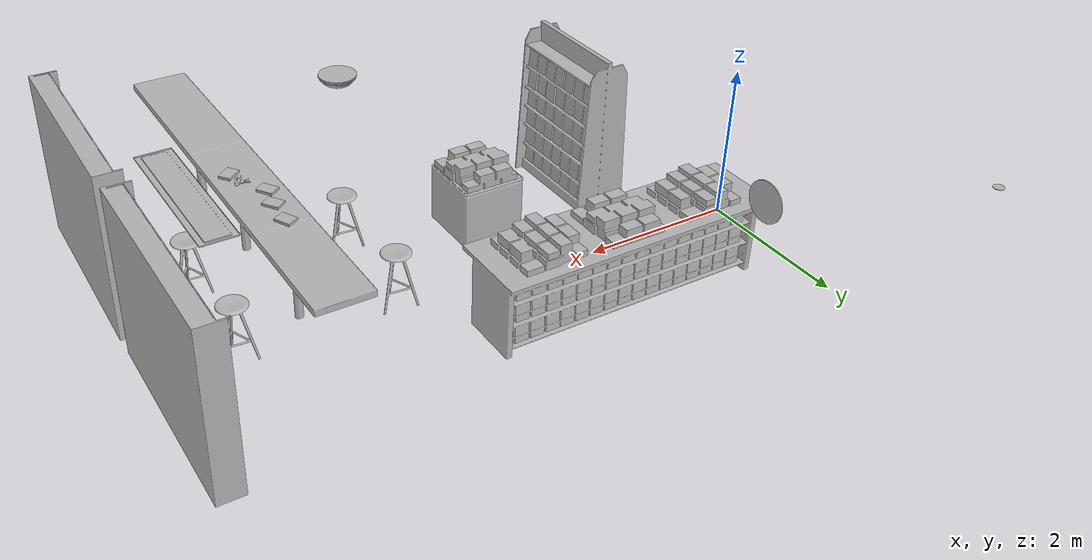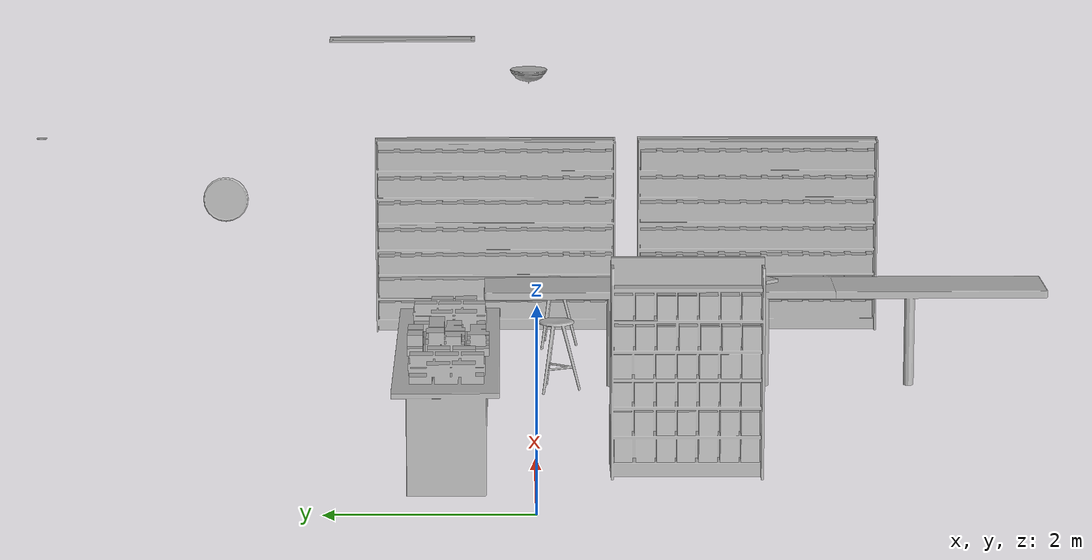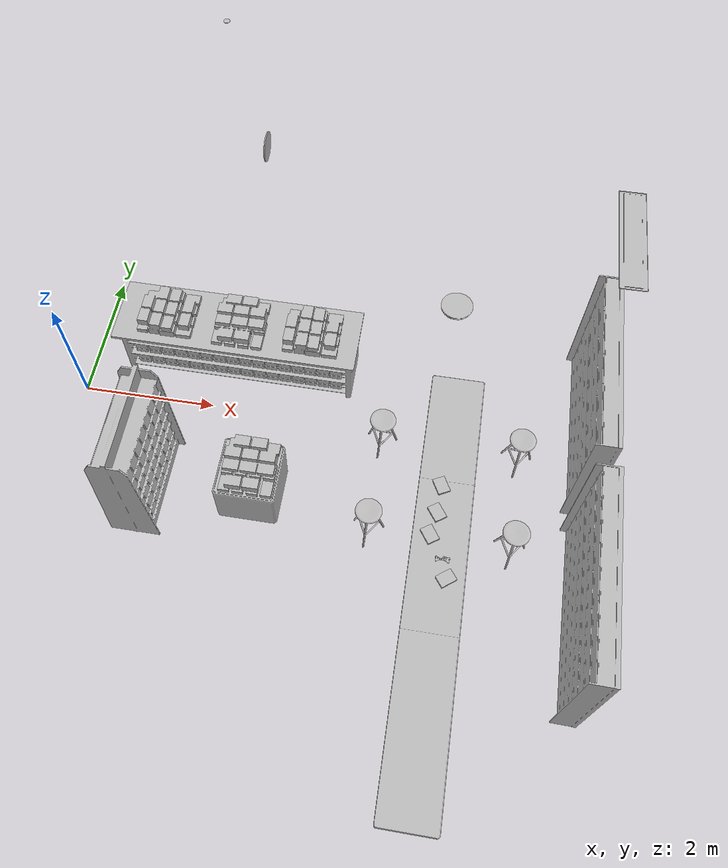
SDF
<sdf version="1.6">
 <world name="default">
  <model name="AirConditionerC_01_001">
   <link name="aws_robomaker_retail_AirConditionerC_01::link">
    <inertial><mass>50</mass></inertial>
    <collision name="collision">
     <geometry>
      <mesh>
       <uri>file://models/aws_robomaker_retail_AirConditionerC_01/meshes/aws_AirConditionerC_01_collision.DAE</uri>
       <scale>1 1 1</scale>
      </mesh>
     </geometry>
    </collision>
    <visual name="visual">
     <geometry>
      <mesh>
       <uri>file://models/aws_robomaker_retail_AirConditionerC_01/meshes/aws_AirConditionerC_01_visual.DAE</uri>
      </mesh>
     </geometry>
     <meta><layer>3</layer></meta>
    </visual>
   </link>
   <static>1</static>
   <pose>7.4582 1.42245 3.29094 0 0 -1.56422</pose>
  </model>
  <model name="Bicycle_01_001">
   <link name="aws_robomaker_retail_Bicycle_01::link">
    <inertial>
     <mass>0.04</mass>
     <inertia><ixx>0.1</ixx><ixy>0</ixy><ixz>0</ixz><iyy>0.1</iyy><iyz>0</iyz><izz>0.01</izz></inertia>
    </inertial>
    <collision name="collision">
     <geometry>
      <mesh>
       <uri>file://models/aws_robomaker_retail_Bicycle_01/meshes/aws_Bicycle_01_collision.DAE</uri>
       <scale>1 1 1</scale>
      </mesh>
     </geometry>
    </collision>
    <visual name="visual">
     <geometry>
      <mesh><uri>file://models/aws_robomaker_retail_Bicycle_01/meshes/aws_Bicycle_01_visual.DAE</uri></mesh>
     </geometry>
     <meta><layer>1</layer></meta>
    </visual>
   </link>
   <static>1</static>
   <pose>5.68125 -2.24245 0.931246 2e-06 -2.4e-05 -0</pose>
  </model>
  <model name="BookE_01_001">
   <link name="aws_robomaker_retail_BookE_01::link">
    <inertial>
     <mass>1</mass>
     <inertia><ixy>0</ixy><ixz>0</ixz><iyz>0</iyz><ixx>0.0666</ixx><iyy>0.0346</iyy><izz>0.0986</izz></inertia>
    </inertial>
    <collision name="collision">
     <geometry>
      <mesh>
       <uri>file://models/aws_robomaker_retail_BookE_01/meshes/aws_BookE_01_collision.DAE</uri>
       <scale>1 1 1</scale>
      </mesh>
     </geometry>
    </collision>
    <visual name="visual">
     <geometry>
      <mesh><uri>file://models/aws_robomaker_retail_BookE_01/meshes/aws_BookE_01_visual.DAE</uri></mesh>
     </geometry>
     <meta><layer>1</layer></meta>
    </visual>
   </link>
   <static>1</static>
   <pose>5.47653 -1.93253 0.948933 4e-06 1e-06 -2.54352</pose>
  </model>
  <model name="BookE_01_003">
   <link name="aws_robomaker_retail_BookE_01::link">
    <inertial>
     <mass>1</mass>
     <inertia><ixy>0</ixy><ixz>0</ixz><iyz>0</iyz><ixx>0.0666</ixx><iyy>0.0346</iyy><izz>0.0986</izz></inertia>
    </inertial>
    <collision name="collision">
     <geometry>
      <mesh>
       <uri>file://models/aws_robomaker_retail_BookE_01/meshes/aws_BookE_01_collision.DAE</uri>
       <scale>1 1 1</scale>
      </mesh>
     </geometry>
    </collision>
    <visual name="visual">
     <geometry>
      <mesh><uri>file://models/aws_robomaker_retail_BookE_01/meshes/aws_BookE_01_visual.DAE</uri></mesh>
     </geometry>
     <meta><layer>1</layer></meta>
    </visual>
   </link>
   <static>1</static>
   <pose>5.55255 -1.21421 0.948933 4e-06 -1e-06 -2.65431</pose>
  </model>
  <model name="BookE_01_005">
   <link name="aws_robomaker_retail_BookE_01::link">
    <inertial>
     <mass>1</mass>
     <inertia><ixy>0</ixy><ixz>0</ixz><iyz>0</iyz><ixx>0.0666</ixx><iyy>0.0346</iyy><izz>0.0986</izz></inertia>
    </inertial>
    <collision name="collision">
     <geometry>
      <mesh>
       <uri>file://models/aws_robomaker_retail_BookE_01/meshes/aws_BookE_01_collision.DAE</uri>
       <scale>1 1 1</scale>
      </mesh>
     </geometry>
    </collision>
    <visual name="visual">
     <geometry>
      <mesh><uri>file://models/aws_robomaker_retail_BookE_01/meshes/aws_BookE_01_visual.DAE</uri></mesh>
     </geometry>
     <meta><layer>1</layer></meta>
    </visual>
   </link>
   <static>1</static>
   <pose>5.53815 -1.61032 0.948933 0 0 -2.5269</pose>
  </model>
  <model name="BookE_01_011">
   <link name="aws_robomaker_retail_BookE_01::link">
    <inertial>
     <mass>1</mass>
     <inertia><ixy>0</ixy><ixz>0</ixz><iyz>0</iyz><ixx>0.0666</ixx><iyy>0.0346</iyy><izz>0.0986</izz></inertia>
    </inertial>
    <collision name="collision">
     <geometry>
      <mesh>
       <uri>file://models/aws_robomaker_retail_BookE_01/meshes/aws_BookE_01_collision.DAE</uri>
       <scale>1 1 1</scale>
      </mesh>
     </geometry>
    </collision>
    <visual name="visual">
     <geometry>
      <mesh><uri>file://models/aws_robomaker_retail_BookE_01/meshes/aws_BookE_01_visual.DAE</uri></mesh>
     </geometry>
     <meta><layer>1</layer></meta>
    </visual>
   </link>
   <static>1</static>
   <pose>5.74923 -2.49202 0.948933 2e-06 1e-06 2.22339</pose>
  </model>
  <model name="BookF_01_001">
   <link name="aws_robomaker_retail_BookF_01::link">
    <inertial>
     <mass>10</mass>
     <inertia>
      <ixx>0.583817</ixx>
      <ixy>0</ixy>
      <ixz>0</ixz>
      <iyy>0.502925</iyy>
      <iyz>0</iyz>
      <izz>0.99304</izz>
     </inertia>
    </inertial>
    <collision name="collision">
     <geometry>
      <mesh>
       <uri>file://models/aws_robomaker_retail_BookF_01/meshes/aws_BookF_01_collision.DAE</uri>
       <scale>1 1 1</scale>
      </mesh>
     </geometry>
    </collision>
    <visual name="visual">
     <geometry>
      <mesh><uri>file://models/aws_robomaker_retail_BookF_01/meshes/aws_BookF_01_visual.DAE</uri></mesh>
     </geometry>
     <meta><layer>1</layer></meta>
    </visual>
   </link>
   <static>1</static>
   <pose>2.93178 -1.30325 0.770041 0.003448 -1.1e-05 0.003114</pose>
  </model>
  <model name="BookF_01_004">
   <link name="aws_robomaker_retail_BookF_01::link">
    <inertial>
     <mass>10</mass>
     <inertia>
      <ixx>0.583817</ixx>
      <ixy>0</ixy>
      <ixz>0</ixz>
      <iyy>0.502925</iyy>
      <iyz>0</iyz>
      <izz>0.99304</izz>
     </inertia>
    </inertial>
    <collision name="collision">
     <geometry>
      <mesh>
       <uri>file://models/aws_robomaker_retail_BookF_01/meshes/aws_BookF_01_collision.DAE</uri>
       <scale>1 1 1</scale>
      </mesh>
     </geometry>
    </collision>
    <visual name="visual">
     <geometry>
      <mesh><uri>file://models/aws_robomaker_retail_BookF_01/meshes/aws_BookF_01_visual.DAE</uri></mesh>
     </geometry>
     <meta><layer>1</layer></meta>
    </visual>
   </link>
   <static>1</static>
   <pose>1.26164 0.856469 1.03816 8e-06 -0 1.58038</pose>
  </model>
  <model name="BookD_01_004">
   <link name="aws_robomaker_retail_BookD_01::link">
    <inertial><mass>0.5</mass></inertial>
    <collision name="collision">
     <geometry>
      <mesh>
       <uri>file://models/aws_robomaker_retail_BookD_01/meshes/aws_BookD_01_collision.DAE</uri>
       <scale>1 1 1</scale>
      </mesh>
     </geometry>
    </collision>
    <visual name="visual">
     <geometry>
      <mesh><uri>file://models/aws_robomaker_retail_BookD_01/meshes/aws_BookD_01_visual.DAE</uri></mesh>
     </geometry>
     <meta><layer>1</layer></meta>
    </visual>
   </link>
   <static>1</static>
   <pose>2.35863 0.854853 1.03815 6e-06 -0 0.001712</pose>
  </model>
  <model name="BookF_01_005">
   <link name="aws_robomaker_retail_BookF_01::link">
    <inertial>
     <mass>10</mass>
     <inertia>
      <ixx>0.583817</ixx>
      <ixy>0</ixy>
      <ixz>0</ixz>
      <iyy>0.502925</iyy>
      <iyz>0</iyz>
      <izz>0.99304</izz>
     </inertia>
    </inertial>
    <collision name="collision">
     <geometry>
      <mesh>
       <uri>file://models/aws_robomaker_retail_BookF_01/meshes/aws_BookF_01_collision.DAE</uri>
       <scale>1 1 1</scale>
      </mesh>
     </geometry>
    </collision>
    <visual name="visual">
     <geometry>
      <mesh><uri>file://models/aws_robomaker_retail_BookF_01/meshes/aws_BookF_01_visual.DAE</uri></mesh>
     </geometry>
     <meta><layer>1</layer></meta>
    </visual>
   </link>
   <static>1</static>
   <pose>3.43061 0.856469 1.03816 8e-06 -0 1.58038</pose>
  </model>
  <model name="BookshelfA_01_001">
   <link name="aws_robomaker_retail_BookshelfA_01::link">
    <inertial>
     <mass>50</mass>
     <inertia><ixx>27.7341</ixx><ixy>0</ixy><ixz>0</ixz><iyy>20.9361</iyy><iyz>0</iyz><izz>11.3596</izz></inertia>
    </inertial>
    <collision name="collision">
     <geometry>
      <mesh>
       <uri>file://models/aws_robomaker_retail_BookshelfA_01/meshes/aws_BookshelfA_01_collision.DAE</uri>
       <scale>1 1 1</scale>
      </mesh>
     </geometry>
    </collision>
    <visual name="visual">
     <geometry>
      <mesh><uri>file://models/aws_robomaker_retail_BookshelfA_01/meshes/aws_BookshelfA_01_visual.DAE</uri></mesh>
     </geometry>
     <meta><layer>1</layer></meta>
    </visual>
   </link>
   <static>1</static>
   <pose>1.40515 -1.44974 0.03755 0.00349 -3e-06 0.000696</pose>
  </model>
  <model name="BookshelfB_01_007">
   <link name="aws_robomaker_retail_BookshelfB_01::link">
    <inertial>
     <mass>50</mass>
     <inertia><ixx>19.8742</ixx><ixy>0</ixy><ixz>0</ixz><iyy>49.1263</iyy><iyz>0</iyz><izz>30.2231</izz></inertia>
    </inertial>
    <collision name="collision">
     <geometry>
      <mesh>
       <uri>file://models/aws_robomaker_retail_BookshelfB_01/meshes/aws_BookshelfB_01_collision.DAE</uri>
       <scale>1 1 1</scale>
      </mesh>
     </geometry>
    </collision>
    <visual name="visual">
     <geometry>
      <mesh><uri>file://models/aws_robomaker_retail_BookshelfB_01/meshes/aws_BookshelfB_01_visual.DAE</uri></mesh>
     </geometry>
     <meta><layer>1</layer></meta>
    </visual>
   </link>
   <static>1</static>
   <pose>7.47833 -2.51065 0.017402 1e-05 -1.3e-05 1.56207</pose>
  </model>
  <model name="BookshelfB_01_008">
   <link name="aws_robomaker_retail_BookshelfB_01::link">
    <inertial>
     <mass>50</mass>
     <inertia><ixx>19.8742</ixx><ixy>0</ixy><ixz>0</ixz><iyy>49.1263</iyy><iyz>0</iyz><izz>30.2231</izz></inertia>
    </inertial>
    <collision name="collision">
     <geometry>
      <mesh>
       <uri>file://models/aws_robomaker_retail_BookshelfB_01/meshes/aws_BookshelfB_01_collision.DAE</uri>
       <scale>1 1 1</scale>
      </mesh>
     </geometry>
    </collision>
    <visual name="visual">
     <geometry>
      <mesh><uri>file://models/aws_robomaker_retail_BookshelfB_01/meshes/aws_BookshelfB_01_visual.DAE</uri></mesh>
     </geometry>
     <meta><layer>1</layer></meta>
    </visual>
   </link>
   <static>1</static>
   <pose>7.47833 0.402539 0.017181 3e-06 -0.000156 1.5708</pose>
  </model>
  <model name="BookshelfC_01_001">
   <link name="aws_robomaker_retail_BookshelfC_01::link">
    <inertial>
     <mass>50</mass>
     <inertia><ixx>5.5865</ixx><ixy>0</ixy><ixz>0</ixz><iyy>5.47324</iyy><iyz>0</iyz><izz>6.23277</izz></inertia>
    </inertial>
    <collision name="collision">
     <geometry>
      <mesh>
       <uri>file://models/aws_robomaker_retail_BookshelfC_01/meshes/aws_BookshelfC_01_collision.DAE</uri>
       <scale>1 1 1</scale>
      </mesh>
     </geometry>
    </collision>
    <visual name="visual">
     <geometry>
      <mesh><uri>file://models/aws_robomaker_retail_BookshelfC_01/meshes/aws_BookshelfC_01_visual.DAE</uri></mesh>
     </geometry>
     <meta><layer>1</layer></meta>
    </visual>
   </link>
   <static>1</static>
   <pose>2.91113 -1.31023 0.008469 0.003452 -3e-06 0.00062</pose>
  </model>
  <model name="ChairB_01_001">
   <link name="aws_robomaker_retail_ChairB_01::link">
    <inertial>
     <mass>3</mass>
     <inertia>
      <ixx>0.188185</ixx>
      <ixy>0</ixy>
      <ixz>0</ixz>
      <iyy>0.190617</iyy>
      <iyz>0</iyz>
      <izz>0.100999</izz>
     </inertia>
    </inertial>
    <collision name="collision">
     <geometry>
      <mesh>
       <uri>file://models/aws_robomaker_retail_ChairB_01/meshes/aws_ChairB_01_collision.DAE</uri>
       <scale>1 1 1</scale>
      </mesh>
     </geometry>
    </collision>
    <visual name="visual">
     <geometry>
      <mesh><uri>file://models/aws_robomaker_retail_ChairB_01/meshes/aws_ChairB_01_visual.DAE</uri></mesh>
     </geometry>
     <meta><layer>1</layer></meta>
    </visual>
   </link>
   <static>1</static>
   <pose>6.64396 -0.210457 0.022051 0 0.006174 8.8e-05</pose>
  </model>
  <model name="ChairB_01_002">
   <link name="aws_robomaker_retail_ChairB_01::link">
    <inertial>
     <mass>3</mass>
     <inertia>
      <ixx>0.188185</ixx>
      <ixy>0</ixy>
      <ixz>0</ixz>
      <iyy>0.190617</iyy>
      <iyz>0</iyz>
      <izz>0.100999</izz>
     </inertia>
    </inertial>
    <collision name="collision">
     <geometry>
      <mesh>
       <uri>file://models/aws_robomaker_retail_ChairB_01/meshes/aws_ChairB_01_collision.DAE</uri>
       <scale>1 1 1</scale>
      </mesh>
     </geometry>
    </collision>
    <visual name="visual">
     <geometry>
      <mesh><uri>file://models/aws_robomaker_retail_ChairB_01/meshes/aws_ChairB_01_visual.DAE</uri></mesh>
     </geometry>
     <meta><layer>1</layer></meta>
    </visual>
   </link>
   <static>1</static>
   <pose>6.64396 -1.62199 0.022051 0 0.006174 8.8e-05</pose>
  </model>
  <model name="ChairB_01_005">
   <link name="aws_robomaker_retail_ChairB_01::link">
    <inertial>
     <mass>3</mass>
     <inertia>
      <ixx>0.188185</ixx>
      <ixy>0</ixy>
      <ixz>0</ixz>
      <iyy>0.190617</iyy>
      <iyz>0</iyz>
      <izz>0.100999</izz>
     </inertia>
    </inertial>
    <collision name="collision">
     <geometry>
      <mesh>
       <uri>file://models/aws_robomaker_retail_ChairB_01/meshes/aws_ChairB_01_collision.DAE</uri>
       <scale>1 1 1</scale>
      </mesh>
     </geometry>
    </collision>
    <visual name="visual">
     <geometry>
      <mesh><uri>file://models/aws_robomaker_retail_ChairB_01/meshes/aws_ChairB_01_visual.DAE</uri></mesh>
     </geometry>
     <meta><layer>1</layer></meta>
    </visual>
   </link>
   <static>1</static>
   <pose>4.6533 -0.210457 0.022051 0 0.006174 8.8e-05</pose>
  </model>
  <model name="ChairB_01_006">
   <link name="aws_robomaker_retail_ChairB_01::link">
    <inertial>
     <mass>3</mass>
     <inertia>
      <ixx>0.188185</ixx>
      <ixy>0</ixy>
      <ixz>0</ixz>
      <iyy>0.190617</iyy>
      <iyz>0</iyz>
      <izz>0.100999</izz>
     </inertia>
    </inertial>
    <collision name="collision">
     <geometry>
      <mesh>
       <uri>file://models/aws_robomaker_retail_ChairB_01/meshes/aws_ChairB_01_collision.DAE</uri>
       <scale>1 1 1</scale>
      </mesh>
     </geometry>
    </collision>
    <visual name="visual">
     <geometry>
      <mesh><uri>file://models/aws_robomaker_retail_ChairB_01/meshes/aws_ChairB_01_visual.DAE</uri></mesh>
     </geometry>
     <meta><layer>1</layer></meta>
    </visual>
   </link>
   <static>1</static>
   <pose>4.6533 -1.62199 0.022051 0 0.006174 8.8e-05</pose>
  </model>
  <model name="DeskB_01_001">
   <link name="aws_robomaker_retail_DeskB_01::link">
    <inertial>
     <mass>50</mass>
     <inertia><ixx>154.884</ixx><ixy>0</ixy><ixz>0</ixz><iyy>7.48424</iyy><iyz>0</iyz><izz>152.099</izz></inertia>
    </inertial>
    <collision name="collision">
     <geometry>
      <mesh>
       <uri>file://models/aws_robomaker_retail_DeskB_01/meshes/aws_DeskB_01_collision.DAE</uri>
       <scale>1 1 1</scale>
      </mesh>
     </geometry>
    </collision>
    <visual name="visual">
     <geometry>
      <mesh><uri>file://models/aws_robomaker_retail_DeskB_01/meshes/aws_DeskB_01_visual.DAE</uri></mesh>
     </geometry>
     <meta><layer>1</layer></meta>
    </visual>
   </link>
   <static>1</static>
   <pose>5.62294 -2.47542 -0.181282 0 -0 0</pose>
  </model>
  <model name="DeskA_01_005">
   <link name="aws_robomaker_retail_DeskA_01::link">
    <inertial>
     <mass>20</mass>
     <inertia><ixx>3.49717</ixx><ixy>0</ixy><ixz>0</ixz><iyy>23.5599</iyy><iyz>0</iyz><izz>23.5702</izz></inertia>
    </inertial>
    <collision name="collision">
     <geometry>
      <mesh>
       <uri>file://models/aws_robomaker_retail_DeskA_01/meshes/aws_DeskA_01_collision.DAE</uri>
       <scale>1 1 1</scale>
      </mesh>
     </geometry>
    </collision>
    <visual name="visual">
     <geometry>
      <mesh><uri>file://models/aws_robomaker_retail_DeskA_01/meshes/aws_DeskA_01_visual.DAE</uri></mesh>
     </geometry>
     <meta><layer>1</layer></meta>
    </visual>
   </link>
   <static>1</static>
   <pose>2.2982 0.861754 0.014883 -2e-06 0.003451 2.4e-05</pose>
  </model>
  <model name="Horologe_01_001">
   <link name="aws_robomaker_retail_Horologe_01::link">
    <inertial><mass>1</mass></inertial>
    <collision name="collision">
     <geometry>
      <mesh>
       <uri>file://models/aws_robomaker_retail_Horologe_01/meshes/aws_Horologe_01_collision.DAE</uri>
       <scale>1 1 1</scale>
      </mesh>
     </geometry>
    </collision>
    <visual name="visual">
     <geometry>
      <mesh><uri>file://models/aws_robomaker_retail_Horologe_01/meshes/aws_Horologe_01_visual.DAE</uri></mesh>
     </geometry>
     <meta><layer>2</layer></meta>
    </visual>
   </link>
   <static>1</static>
   <pose>2.40512 3.02571 2.52519 0 0 -1.56558</pose>
  </model>
  <model name="LightA_01_003">
   <link name="aws_robomaker_retail_LightA_01::link">
    <inertial><mass>1</mass></inertial>
    <collision name="collision">
     <geometry>
      <mesh>
       <uri>file://models/aws_robomaker_retail_LightA_01/meshes/aws_LightA_01_collision.DAE</uri>
       <scale>1 1 1</scale>
      </mesh>
     </geometry>
    </collision>
    <visual name="visual">
     <geometry>
      <mesh><uri>file://models/aws_robomaker_retail_LightA_01/meshes/aws_LightA_01_visual.DAE</uri></mesh>
     </geometry>
     <meta><layer>3</layer></meta>
    </visual>
   </link>
   <static>1</static>
   <pose>5.38399 0.04192 3.15033 0 -0 0</pose>
  </model>
  <model name="Spotlight_01_001">
   <link name="aws_robomaker_retail_Spotlight_01::link">
    <inertial><mass>1</mass></inertial>
    <collision name="collision">
     <geometry>
      <mesh>
       <uri>file://models/aws_robomaker_retail_Spotlight_01/meshes/aws_Spotlight_01_collision.DAE</uri>
       <scale>1 1 1</scale>
      </mesh>
     </geometry>
    </collision>
    <visual name="visual">
     <geometry>
      <mesh><uri>file://models/aws_robomaker_retail_Spotlight_01/meshes/aws_Spotlight_01_visual.DAE</uri></mesh>
     </geometry>
     <meta><layer>3</layer></meta>
    </visual>
   </link>
   <static>1</static>
   <pose>1.4932 4.69237 3.30266 0 -0 0</pose>
  </model>
 </world>
</sdf>
